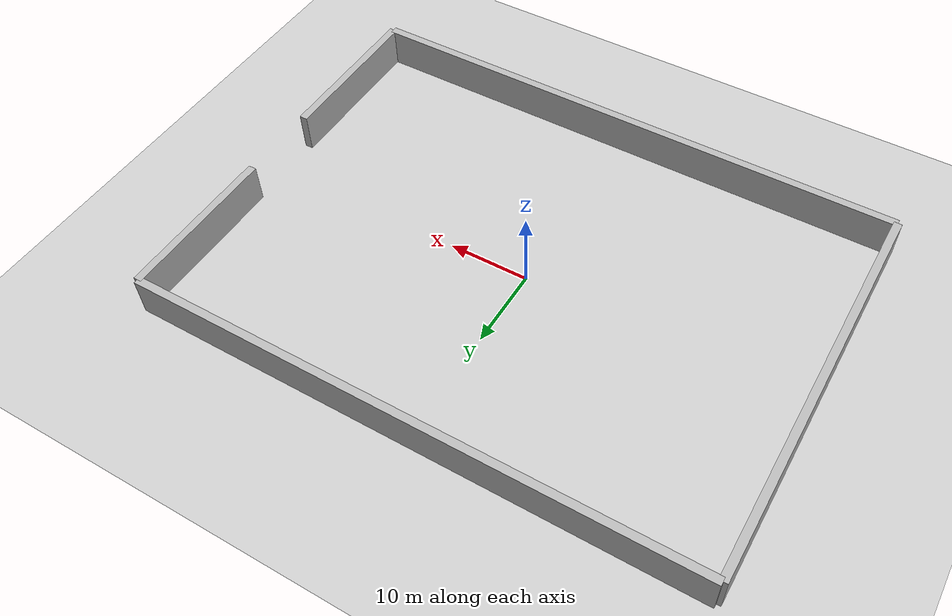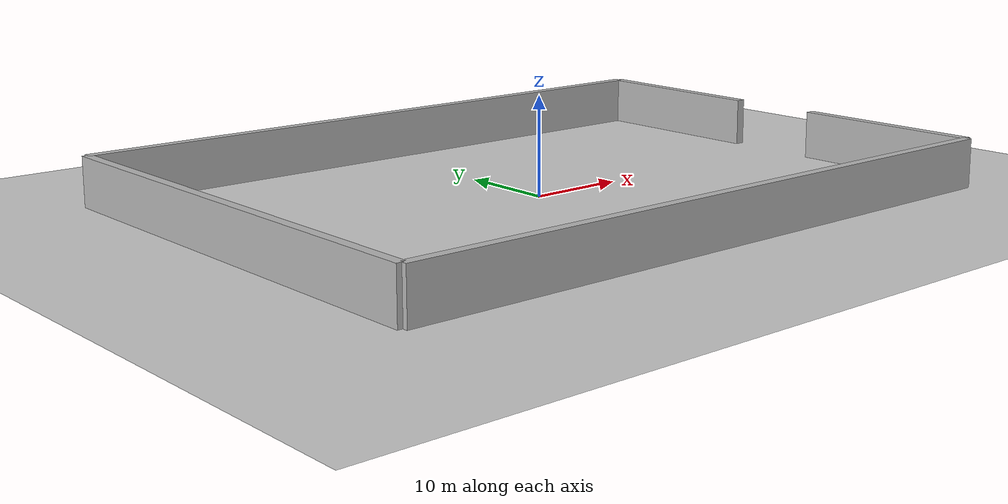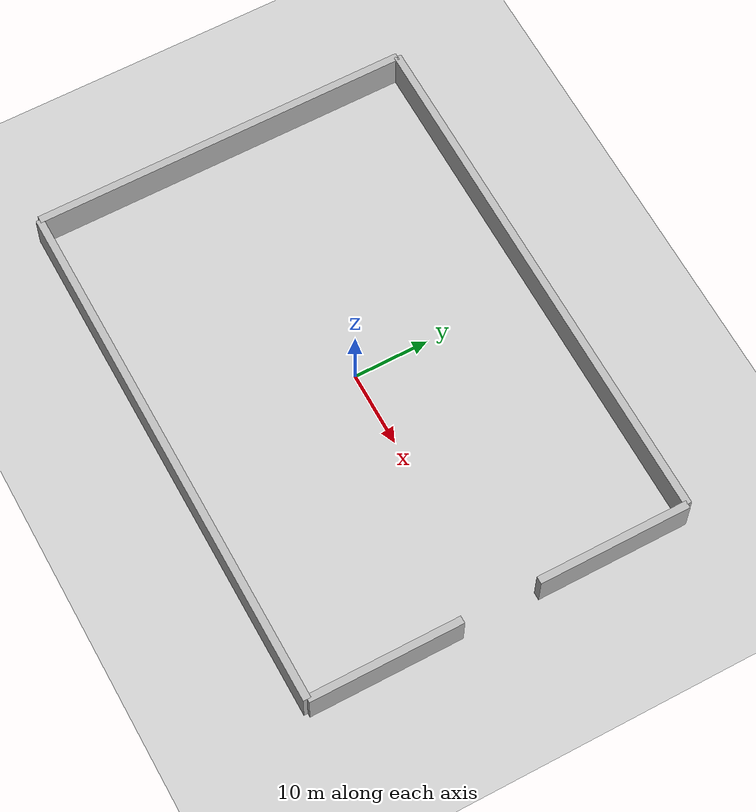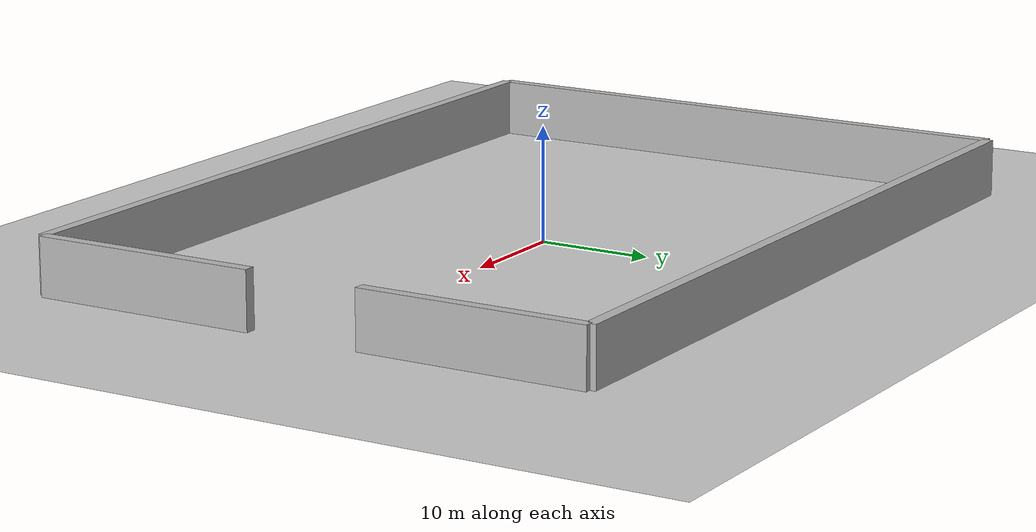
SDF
<sdf version='1.7'>
  <world name='default'>
    <light name='sun' type='directional'>
      <cast_shadows>1</cast_shadows>
      <pose>0 0 10 0 -0 0</pose>
      <diffuse>0.8 0.8 0.8 1</diffuse>
      <specular>0.2 0.2 0.2 1</specular>
      <attenuation>
        <range>1000</range>
        <constant>0.9</constant>
        <linear>0.01</linear>
        <quadratic>0.001</quadratic>
      </attenuation>
      <direction>-0.5 0.1 -0.9</direction>
      <spot>
        <inner_angle>0</inner_angle>
        <outer_angle>0</outer_angle>
        <falloff>0</falloff>
      </spot>
    </light>
    <model name='ground_plane'>
      <static>1</static>
      <link name='link'>
        <collision name='collision'>
          <geometry>
            <plane>
              <normal>0 0 1</normal>
              <size>100 100</size>
            </plane>
          </geometry>
          <surface>
            <friction>
              <ode>
                <mu>100</mu>
                <mu2>50</mu2>
              </ode>
              <torsional>
                <ode/>
              </torsional>
            </friction>
            <contact>
              <ode/>
            </contact>
            <bounce/>
          </surface>
          <max_contacts>10</max_contacts>
        </collision>
        <visual name='visual'>
          <cast_shadows>0</cast_shadows>
          <geometry>
            <plane>
              <normal>0 0 1</normal>
              <size>100 100</size>
            </plane>
          </geometry>
          <material>
            <script>
              <uri>file://media/materials/scripts/gazebo.material</uri>
              <name>Gazebo/Grey</name>
            </script>
          </material>
        </visual>
        <self_collide>0</self_collide>
        <enable_wind>0</enable_wind>
        <kinematic>0</kinematic>
      </link>
    </model>
    <model name='wall_1'>
      <static>1</static>
      <link name='link'>
        <collision name='collision'>
          <geometry>
            <box>
              <size>70 1 5</size>
            </box>
          </geometry>
        </collision>
        <visual name='visual'>
          <geometry>
            <box>
              <size>70 1 5</size>
            </box>
          </geometry>
        </visual>
      </link>
      <pose>0 25 2.5 0 0 0</pose>
    </model>
    <model name='wall_2'>
      <static>1</static>
      <link name='link'>
        <collision name='collision'>
          <geometry>
            <box>
              <size>70 1 5</size>
            </box>
          </geometry>
        </collision>
        <visual name='visual'>
          <geometry>
            <box>
              <size>70 1 5</size>
            </box>
          </geometry>
        </visual>
      </link>
      <pose>0 -25 2.5 0 0 0</pose>
    </model>
    <model name='wall_3'>
      <static>1</static>
      <link name='link'>
        <collision name='collision'>
          <geometry>
            <box>
              <size>1 20 5</size>
            </box>
          </geometry>
        </collision>
        <visual name='visual'>
          <geometry>
            <box>
              <size>1 20 5</size>
            </box>
          </geometry>
        </visual>
      </link>
      <pose>35 -15 2.5 0 0 0</pose>
    </model>
    <model name='wall_4'>
      <static>1</static>
      <link name='link'>
        <collision name='collision'>
          <geometry>
            <box>
              <size>1 50 5</size>
            </box>
          </geometry>
        </collision>
        <visual name='visual'>
          <geometry>
            <box>
              <size>1 50 5</size>
            </box>
          </geometry>
        </visual>
      </link>
      <pose>-35 0 2.5 0 0 0</pose>
    </model>
    <model name='wall_5'>
      <static>1</static>
      <link name='link'>
        <collision name='collision'>
          <geometry>
            <box>
              <size>1 20 5</size>
            </box>
          </geometry>
        </collision>
        <visual name='visual'>
          <geometry>
            <box>
              <size>1 20 5</size>
            </box>
          </geometry>
        </visual>
      </link>
      <pose>35 15 2.5 0 0 0</pose>
    </model>
  </world>
</sdf>
